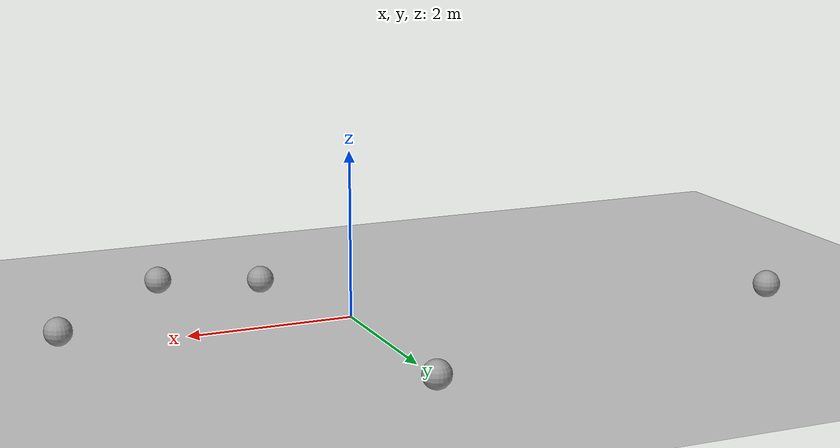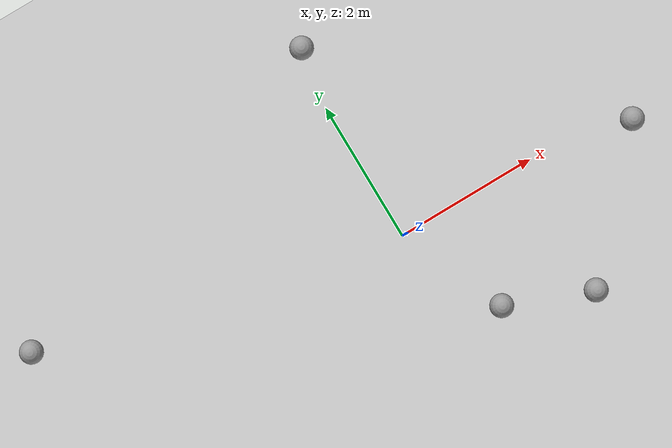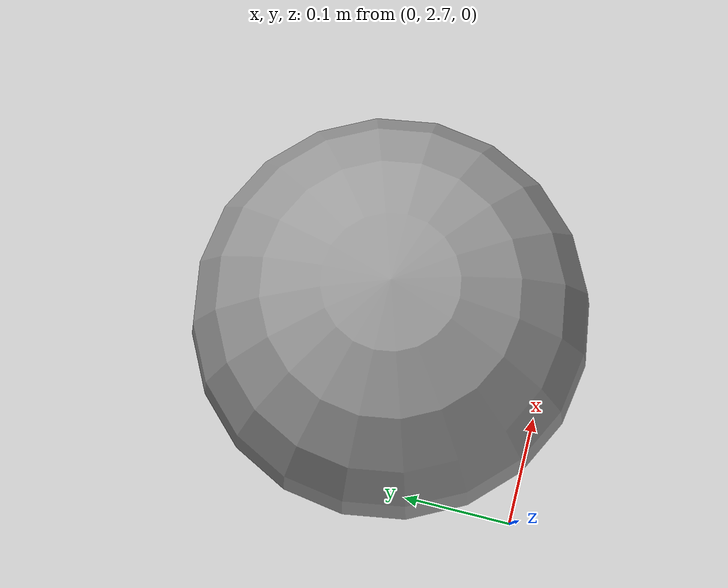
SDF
<sdf version="1.7">
 <world name="default">
  <light name="sun" type="directional">
   <pose>0 0 10 0 -0 0</pose>
   <diffuse>0.8 0.8 0.8 1</diffuse>
   <specular>0.2 0.2 0.2 1</specular>
   <attenuation>
    <range>1000</range>
    <constant>0.9</constant>
    <linear>0.01</linear>
    <quadratic>0.001</quadratic>
   </attenuation>
   <direction>-0.5 0.1 -0.9</direction>
   <spot><inner_angle>0</inner_angle><outer_angle>0</outer_angle><falloff>0</falloff></spot>
  </light>
  <model name="ground_plane">
   <static>1</static>
   <link name="link">
    <collision name="collision">
     <geometry><plane><normal>0 0 1</normal><size>100 100</size></plane></geometry>
     <surface>
      <contact><collide_bitmask>65535</collide_bitmask></contact>
      <friction><ode><mu>100</mu><mu2>50</mu2></ode></friction>
     </surface>
    </collision>
    <visual name="visual">
     <cast_shadows>0</cast_shadows>
     <geometry><plane><normal>0 0 1</normal><size>100 100</size></plane></geometry>
     <material>
      <script><uri>file://media/materials/scripts/gazebo.material</uri><name>Gazebo/Grey</name></script>
     </material>
    </visual>
   </link>
  </model>
  <gravity>0 0 -9.8</gravity>
  <magnetic_field>6e-06 2.3e-05 -4.2e-05</magnetic_field>
  <atmosphere type="adiabatic"/>
  <physics type="ode">
   <max_step_size>0.001</max_step_size>
   <real_time_factor>1</real_time_factor>
   <real_time_update_rate>1000</real_time_update_rate>
  </physics>
  <scene><ambient>0.4 0.4 0.4 1</ambient><background>0.7 0.7 0.7 1</background><shadows>1</shadows></scene>
  <spherical_coordinates>
   <surface_model>EARTH_WGS84</surface_model>
   <latitude_deg>0</latitude_deg>
   <longitude_deg>0</longitude_deg>
   <elevation>0</elevation>
   <heading_deg>0</heading_deg>
  </spherical_coordinates>
  <model name="unit_sphere">
   <pose>0.642343 -1.47139 0.165157 0 -0 0</pose>
   <link name="link">
    <inertial>
     <mass>1</mass>
     <inertia><ixx>0.1</ixx><ixy>0</ixy><ixz>0</ixz><iyy>0.1</iyy><iyz>0</iyz><izz>0.1</izz></inertia>
    </inertial>
    <collision name="collision"><geometry><sphere><radius>0.165157</radius></sphere></geometry></collision>
    <visual name="visual">
     <geometry><sphere><radius>0.165157</radius></sphere></geometry>
     <material>
      <script><name>Gazebo/Grey</name><uri>file://media/materials/scripts/gazebo.material</uri></script>
     </material>
    </visual>
   </link>
  </model>
  <model name="unit_sphere_clone">
   <pose>-5.02086 1.21201 0.165157 0 -0 0</pose>
   <link name="link">
    <inertial>
     <mass>1</mass>
     <inertia><ixx>0.1</ixx><ixy>0</ixy><ixz>0</ixz><iyy>0.1</iyy><iyz>0</iyz><izz>0.1</izz></inertia>
    </inertial>
    <collision name="collision"><geometry><sphere><radius>0.165157</radius></sphere></geometry></collision>
    <visual name="visual">
     <geometry><sphere><radius>0.165157</radius></sphere></geometry>
     <material>
      <script><name>Gazebo/Grey</name><uri>file://media/materials/scripts/gazebo.material</uri></script>
     </material>
    </visual>
   </link>
  </model>
  <model name="unit_sphere_clone_0">
   <pose>1.82503 -1.93925 0.165157 0 -0 0</pose>
   <link name="link">
    <inertial>
     <mass>1</mass>
     <inertia><ixx>0.1</ixx><ixy>0</ixy><ixz>0</ixz><iyy>0.1</iyy><iyz>0</iyz><izz>0.1</izz></inertia>
    </inertial>
    <collision name="collision"><geometry><sphere><radius>0.165157</radius></sphere></geometry></collision>
    <visual name="visual">
     <geometry><sphere><radius>0.165157</radius></sphere></geometry>
     <material>
      <script><name>Gazebo/Grey</name><uri>file://media/materials/scripts/gazebo.material</uri></script>
     </material>
    </visual>
   </link>
  </model>
  <model name="unit_sphere_clone_1">
   <pose>3.42797 -0.238619 0.165157 0 -0 0</pose>
   <link name="link">
    <inertial>
     <mass>1</mass>
     <inertia><ixx>0.1</ixx><ixy>0</ixy><ixz>0</ixz><iyy>0.1</iyy><iyz>0</iyz><izz>0.1</izz></inertia>
    </inertial>
    <collision name="collision"><geometry><sphere><radius>0.165157</radius></sphere></geometry></collision>
    <visual name="visual">
     <geometry><sphere><radius>0.165157</radius></sphere></geometry>
     <material>
      <script><name>Gazebo/Grey</name><uri>file://media/materials/scripts/gazebo.material</uri></script>
     </material>
    </visual>
   </link>
  </model>
  <model name="unit_sphere_clone_2">
   <pose>0.132896 2.84584 0.165157 0 -0 0</pose>
   <link name="link">
    <inertial>
     <mass>1</mass>
     <inertia><ixx>0.1</ixx><ixy>0</ixy><ixz>0</ixz><iyy>0.1</iyy><iyz>0</iyz><izz>0.1</izz></inertia>
    </inertial>
    <collision name="collision"><geometry><sphere><radius>0.165157</radius></sphere></geometry></collision>
    <visual name="visual">
     <geometry><sphere><radius>0.165157</radius></sphere></geometry>
     <material>
      <script><name>Gazebo/Grey</name><uri>file://media/materials/scripts/gazebo.material</uri></script>
     </material>
    </visual>
   </link>
  </model>
 </world>
</sdf>
